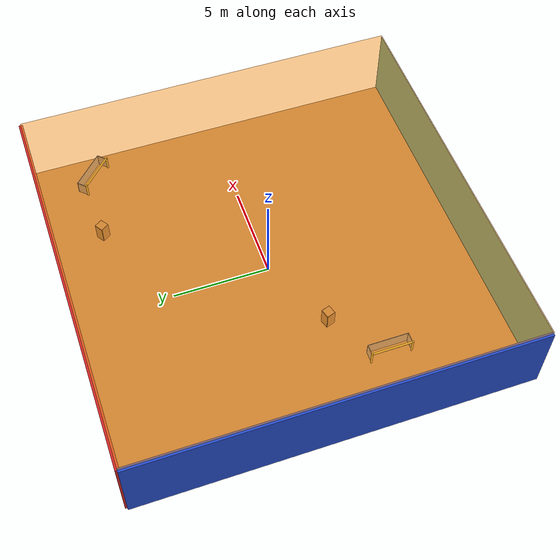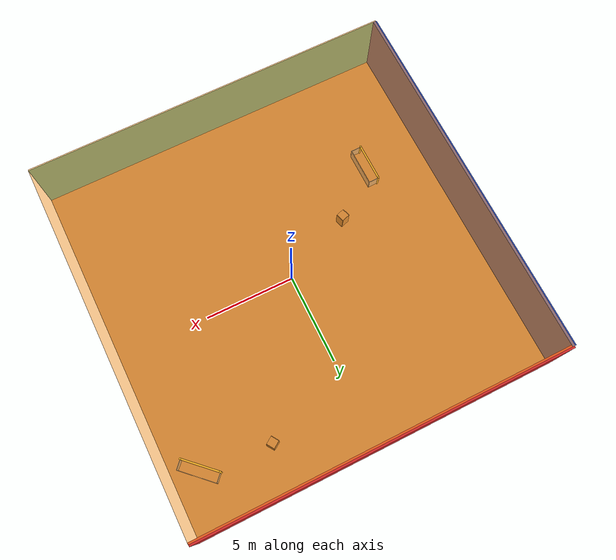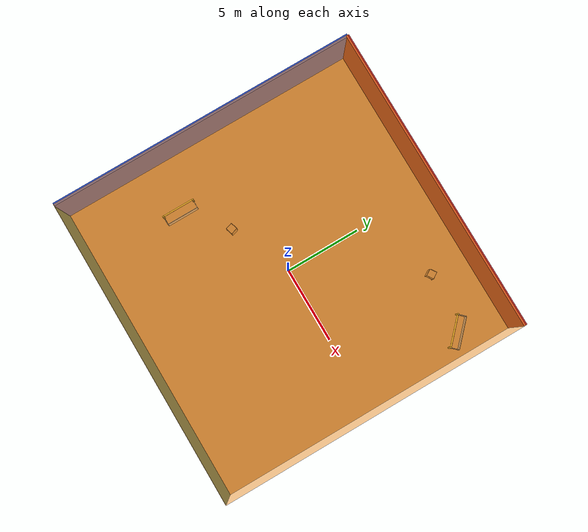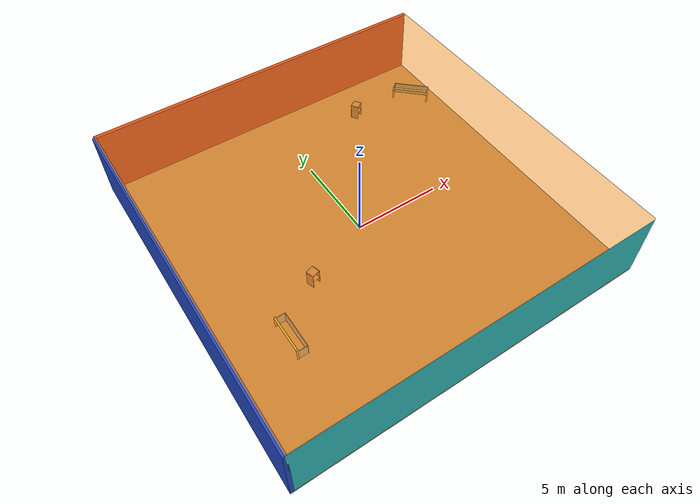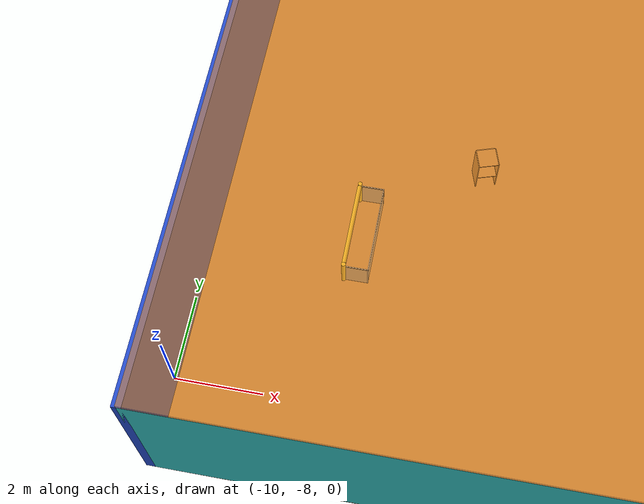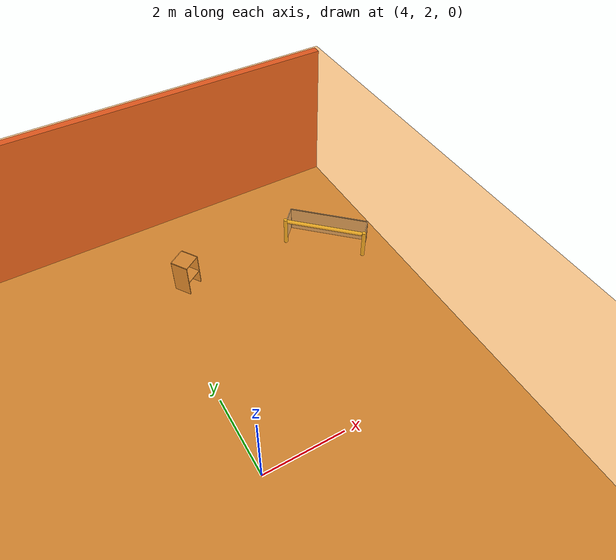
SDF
<sdf version="1.4">
 <world name="default">
  <physics type="ode">
   <max_step_size>0.001</max_step_size>
   <real_time_factor>1</real_time_factor>
   <real_time_update_rate>1000</real_time_update_rate>
   <gravity>0 0 -9.8</gravity>
  </physics>
  <scene><ambient>0.4 0.4 0.4 1</ambient><background>0.7 0.7 0.7 1</background><shadows>1</shadows></scene>
  <model name="Surrounding">
   <static>1</static>
   <link name="Ceiling">
    <collision name="Ceiling_Collision"><geometry><box><size>20 20 0.1</size></box></geometry></collision>
    <visual name="Ceiling_Visual">
     <geometry><box><size>20 20 0.1</size></box></geometry>
     <material>
      <script>
       <uri>file://media/materials/scripts/gazebo.material</uri>
       <name>Gazebo/OrangeTransparent</name>
      </script>
     </material>
    </visual>
    <pose>0 0 4.05 0 0 0</pose>
   </link>
   <link name="Wall_South">
    <collision name="Wall_South_Collision">
     <geometry><box><size>20 0 4</size></box></geometry>
     <pose>0 0 2 0 -0 0</pose>
    </collision>
    <visual name="Wall_South_Visual">
     <pose>0 0 2 0 -0 0</pose>
     <geometry><box><size>20 0 4</size></box></geometry>
     <material>
      <script><uri>file://media/materials/scripts/gazebo.material</uri><name>Gazebo/TurquoiseGlow</name></script>
     </material>
    </visual>
    <velocity_decay><linear>0</linear><angular>0</angular></velocity_decay>
    <pose>0 -10 0 0 -0 0</pose>
   </link>
   <link name="Wall_East">
    <collision name="Wall_21_Collision">
     <geometry><box><size>20 0 4</size></box></geometry>
     <pose>0 0 2 0 -0 0</pose>
    </collision>
    <visual name="Wall_21_Visual">
     <pose>0 0 2 0 -0 0</pose>
     <geometry><box><size>20 0 4</size></box></geometry>
     <material>
      <script><uri>file://media/materials/scripts/gazebo.material</uri><name>Gazebo/GreyTransparent</name></script>
     </material>
    </visual>
    <velocity_decay><linear>0</linear><angular>0</angular></velocity_decay>
    <pose>10 0 0 0 -0 1.5708</pose>
   </link>
   <link name="Wall_North">
    <collision name="Wall_22_Collision">
     <geometry><box><size>20 0.2 4</size></box></geometry>
     <pose>0 0 2 0 -0 0</pose>
    </collision>
    <visual name="Wall_22_Visual">
     <pose>0 0 2 0 -0 0</pose>
     <geometry><box><size>20 0.2 4</size></box></geometry>
     <material>
      <script><uri>file://media/materials/scripts/gazebo.material</uri><name>Gazebo/RedBright</name></script>
     </material>
    </visual>
    <velocity_decay><linear>0</linear><angular>0</angular></velocity_decay>
    <pose>0 10 0 0 -0 0</pose>
   </link>
   <link name="Wall_West">
    <collision name="Wall_23_Collision">
     <geometry><box><size>20 0.2 4</size></box></geometry>
     <pose>0 0 2 0 -0 0</pose>
    </collision>
    <visual name="Wall_23_Visual">
     <pose>0 0 2 0 -0 0</pose>
     <geometry><box><size>20 0.2 4</size></box></geometry>
     <material>
      <script><uri>file://media/materials/scripts/gazebo.material</uri><name>Gazebo/BlueLaser</name></script>
     </material>
    </visual>
    <velocity_decay><linear>0</linear><angular>0</angular></velocity_decay>
    <pose>-10 0 0 0 0 -1.5708</pose>
   </link>
   <link name="Ground_link">
    <collision name="collision">
     <pose>0 0 .05 0 -0 0</pose>
     <geometry><box><size>20 20 0.1</size></box></geometry>
    </collision>
    <visual name="visual">
     <pose>0 0 .05 0 -0 0</pose>
     <geometry><box><size>20 20 0.1</size></box></geometry>
     <material>
      <script><uri>file://media/materials/scripts/gazebo.material</uri><name>Gazebo/Wood</name></script>
     </material>
    </visual>
   </link>
   <static>1</static>
  </model>
  <spherical_coordinates>
   <surface_model>EARTH_WGS84</surface_model>
   <latitude_deg>0</latitude_deg>
   <longitude_deg>0</longitude_deg>
   <elevation>0</elevation>
   <heading_deg>0</heading_deg>
  </spherical_coordinates>
  <light name="lightball_0" type="diffuse">
   <diffuse>0.8 0.8 0.8 1</diffuse>
   <specular>0.2 0.2 0.2 1</specular>
   <attenuation>
    <range>100</range>
    <constant>0.7</constant>
    <linear>0.01</linear>
    <quadratic>0.001</quadratic>
   </attenuation>
   <direction>-0.5 0.1 -0.9</direction>
   <pose>-6.92577479979 -3.15472615881 3.24658218058 0 0 0</pose>
  </light>
  <light name="lightball_1" type="diffuse">
   <diffuse>0.8 0.8 0.8 1</diffuse>
   <specular>0.2 0.2 0.2 1</specular>
   <attenuation>
    <range>100</range>
    <constant>0.7</constant>
    <linear>0.01</linear>
    <quadratic>0.001</quadratic>
   </attenuation>
   <direction>-0.5 0.1 -0.9</direction>
   <pose>0.2642912787 2.18845863077 1.97865102495 0 0 0</pose>
  </light>
  <light name="lightball_2" type="diffuse">
   <diffuse>0.8 0.8 0.8 1</diffuse>
   <specular>0.2 0.2 0.2 1</specular>
   <attenuation>
    <range>100</range>
    <constant>0.7</constant>
    <linear>0.01</linear>
    <quadratic>0.001</quadratic>
   </attenuation>
   <direction>-0.5 0.1 -0.9</direction>
   <pose>-0.0874294791411 1.71777674525 1.99980424516 0 0 0</pose>
  </light>
  <light name="lightball_3" type="diffuse">
   <diffuse>0.8 0.8 0.8 1</diffuse>
   <specular>0.2 0.2 0.2 1</specular>
   <attenuation>
    <range>100</range>
    <constant>0.7</constant>
    <linear>0.01</linear>
    <quadratic>0.001</quadratic>
   </attenuation>
   <direction>-0.5 0.1 -0.9</direction>
   <pose>-9.56620351428 8.77355638406 2.89818001741 0 0 0</pose>
  </light>
  <light name="lightball_4" type="diffuse">
   <diffuse>0.8 0.8 0.8 1</diffuse>
   <specular>0.2 0.2 0.2 1</specular>
   <attenuation>
    <range>100</range>
    <constant>0.7</constant>
    <linear>0.01</linear>
    <quadratic>0.001</quadratic>
   </attenuation>
   <direction>-0.5 0.1 -0.9</direction>
   <pose>9.46290463052 6.76002141479 3.8255342519 0 0 0</pose>
  </light>
  <light name="lightball_5" type="diffuse">
   <diffuse>0.8 0.8 0.8 1</diffuse>
   <specular>0.2 0.2 0.2 1</specular>
   <attenuation>
    <range>100</range>
    <constant>0.7</constant>
    <linear>0.01</linear>
    <quadratic>0.001</quadratic>
   </attenuation>
   <direction>-0.5 0.1 -0.9</direction>
   <pose>3.2506655539 -1.41302917747 0.80131834582 0 0 0</pose>
  </light>
  <light name="lightball_6" type="diffuse">
   <diffuse>0.8 0.8 0.8 1</diffuse>
   <specular>0.2 0.2 0.2 1</specular>
   <attenuation>
    <range>100</range>
    <constant>0.7</constant>
    <linear>0.01</linear>
    <quadratic>0.001</quadratic>
   </attenuation>
   <direction>-0.5 0.1 -0.9</direction>
   <pose>-9.39914729057 -5.31802592334 0.581462953911 0 0 0</pose>
  </light>
  <light name="lightball_7" type="diffuse">
   <diffuse>0.8 0.8 0.8 1</diffuse>
   <specular>0.2 0.2 0.2 1</specular>
   <attenuation>
    <range>100</range>
    <constant>0.7</constant>
    <linear>0.01</linear>
    <quadratic>0.001</quadratic>
   </attenuation>
   <direction>-0.5 0.1 -0.9</direction>
   <pose>-0.890123632434 -5.39082746854 1.02849519889 0 0 0</pose>
  </light>
  <light name="lightball_8" type="diffuse">
   <diffuse>0.8 0.8 0.8 1</diffuse>
   <specular>0.2 0.2 0.2 1</specular>
   <attenuation>
    <range>100</range>
    <constant>0.7</constant>
    <linear>0.01</linear>
    <quadratic>0.001</quadratic>
   </attenuation>
   <direction>-0.5 0.1 -0.9</direction>
   <pose>-0.997986473726 -1.94420683714 2.98827937059 0 0 0</pose>
  </light>
  <light name="lightball_9" type="diffuse">
   <diffuse>0.8 0.8 0.8 1</diffuse>
   <specular>0.2 0.2 0.2 1</specular>
   <attenuation>
    <range>100</range>
    <constant>0.7</constant>
    <linear>0.01</linear>
    <quadratic>0.001</quadratic>
   </attenuation>
   <direction>-0.5 0.1 -0.9</direction>
   <pose>2.38395558632 8.35552523504 1.99462332428 0 0 0</pose>
  </light>
  <light name="lightball_10" type="diffuse">
   <diffuse>0.8 0.8 0.8 1</diffuse>
   <specular>0.2 0.2 0.2 1</specular>
   <attenuation>
    <range>100</range>
    <constant>0.7</constant>
    <linear>0.01</linear>
    <quadratic>0.001</quadratic>
   </attenuation>
   <direction>-0.5 0.1 -0.9</direction>
   <pose>2.23075540104 -5.31524874747 3.62412783342 0 0 0</pose>
  </light>
  <include>
   <uri>model://robocup_3Dsim_goal</uri>
   <pose>-6.75901118983 -3.92566027683 0 0 0 0.00145629682246</pose>
  </include>
  <include><uri>model://cabinet</uri><pose>-3.94401725711 -1.72014313691 0 0 0 1.8773833945</pose></include>
  <include><uri>model://cabinet</uri><pose>4.72181008266 7.42376606466 0 0 0 2.15649300494</pose></include>
  <include>
   <uri>model://robocup_3Dsim_goal</uri>
   <pose>8.39688379333 6.82205248305 0 0 0 0.808324281829</pose>
  </include>
 </world>
</sdf>

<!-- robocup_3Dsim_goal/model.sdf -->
<sdf version="1.5">
  <model name="robocup_3d_goal">
    <static>true</static>
    <link name="left_post">
      <pose>0 1.05 0.45 0 0 0</pose>
      <collision name="collision">
        <geometry>
          <cylinder>
            <radius>0.05</radius>
            <length>0.9</length>
          </cylinder>
        </geometry>
      </collision>
      <visual name="visual">
        <geometry>
          <cylinder>
            <radius>0.05</radius>
            <length>0.9</length>
          </cylinder>
        </geometry>
        <material>
          <script>
            <uri>file://media/materials/scripts/gazebo.material</uri>
            <name>Gazebo/ZincYellow</name>
          </script>
        </material>
      </visual>
    </link>
    <link name="left_support_horiz_lower">
      <pose>0.30 1.05 0.01 0 0 0</pose>
      <collision name="collision">
        <geometry>
          <box>
            <size>0.50 0.02 0.02</size>
          </box>
        </geometry>
      </collision>
      <visual name="visual">
        <geometry>
          <box>
            <size>0.50 0.02 0.02</size>
          </box>
        </geometry>
        <material>
          <script>
            <uri>file://media/materials/scripts/gazebo.material</uri>
            <name>Gazebo/White</name>
          </script>
        </material>
      </visual>
    </link>
    <link name="left_support_horiz_upper">
      <pose>0.30 1.05 0.79 0 0 0</pose>
      <collision name="collision">
        <geometry>
          <box>
            <size>0.50 0.02 0.02</size>
          </box>
        </geometry>
      </collision>
      <visual name="visual">
        <geometry>
          <box>
            <size>0.50 0.02 0.02</size>
          </box>
        </geometry>
        <material>
          <script>
            <uri>file://media/materials/scripts/gazebo.material</uri>
            <name>Gazebo/White</name>
          </script>
        </material>
      </visual>
    </link>
    <link name="left_support_vertical">
      <pose>0.56 1.05 0.4 0 1.5708 0</pose>
      <collision name="collision">
        <geometry>
          <box>
            <size>0.80 0.02 0.02</size>
          </box>
        </geometry>
      </collision>
      <visual name="visual">
        <geometry>
          <box>
            <size>0.80 0.02 0.02</size>
          </box>
        </geometry>
        <material>
          <script>
            <uri>file://media/materials/scripts/gazebo.material</uri>
            <name>Gazebo/White</name>
          </script>
        </material>
      </visual>
    </link>
    <link name="right_support_horiz_lower">
      <pose>0.30 -1.05 0.01 0 0 0</pose>
      <collision name="collision">
        <geometry>
          <box>
            <size>0.50 0.02 0.02</size>
          </box>
        </geometry>
      </collision>
      <visual name="visual">
        <geometry>
          <box>
            <size>0.50 0.02 0.02</size>
          </box>
        </geometry>
        <material>
          <script>
            <uri>file://media/materials/scripts/gazebo.material</uri>
            <name>Gazebo/White</name>
          </script>
        </material>
      </visual>
    </link>
    <link name="right_support_horiz_upper">
      <pose>0.30 -1.05 0.79 0 0 0</pose>
      <collision name="collision">
        <geometry>
          <box>
            <size>0.50 0.02 0.02</size>
          </box>
        </geometry>
      </collision>
      <visual name="visual">
        <geometry>
          <box>
            <size>0.50 0.02 0.02</size>
          </box>
        </geometry>
        <material>
          <script>
            <uri>file://media/materials/scripts/gazebo.material</uri>
            <name>Gazebo/White</name>
          </script>
        </material>
      </visual>
    </link>
    <link name="right_support_vertical">
      <pose>0.56 -1.05 0.4 0 1.5708 0</pose>
      <collision name="collision">
        <geometry>
          <box>
            <size>0.80 0.02 0.02</size>
          </box>
        </geometry>
      </collision>
      <visual name="visual">
        <geometry>
          <box>
            <size>0.80 0.02 0.02</size>
          </box>
        </geometry>
        <material>
          <script>
            <uri>file://media/materials/scripts/gazebo.material</uri>
            <name>Gazebo/White</name>
          </script>
        </material>
      </visual>
    </link>
    <link name="center_support_horiz_lower">
      <pose>0.56 0 0.01 0 1.5708 0</pose>
      <collision name="collision">
        <geometry>
          <box>
            <size>0.02 2.08 0.02</size>
          </box>
        </geometry>
      </collision>
      <visual name="visual">
        <geometry>
          <box>
            <size>0.02 2.08 0.02</size>
          </box>
        </geometry>
        <material>
          <script>
            <uri>file://media/materials/scripts/gazebo.material</uri>
            <name>Gazebo/White</name>
          </script>
        </material>
      </visual>
    </link>
    <link name="center_support_horiz_upper">
      <pose>0.56 0 0.79 0 1.5708 0</pose>
      <collision name="collision">
        <geometry>
          <box>
            <size>0.02 2.08 0.02</size>
          </box>
        </geometry>
      </collision>
      <visual name="visual">
        <geometry>
          <box>
            <size>0.02 2.08 0.02</size>
          </box>
        </geometry>
        <material>
          <script>
            <uri>file://media/materials/scripts/gazebo.material</uri>
            <name>Gazebo/White</name>
          </script>
        </material>
      </visual>
    </link>
    <link name="right_post">
      <pose>0 -1.05 0.45 0 0 0</pose>
      <collision name="collision">
        <geometry>
          <cylinder>
            <radius>0.05</radius>
            <length>0.9</length>
          </cylinder>
        </geometry>
      </collision>
      <visual name="visual">
        <geometry>
          <cylinder>
            <radius>0.05</radius>
            <length>0.9</length>
          </cylinder>
        </geometry>
        <material>
          <script>
            <uri>file://media/materials/scripts/gazebo.material</uri>
            <name>Gazebo/ZincYellow</name>
          </script>
        </material>
      </visual>
    </link>
    <link name="crossbar">
      <pose>0 0 0.85 1.57 1.57 0</pose>
      <collision name="collision">
        <geometry>
          <cylinder>
            <radius>0.05</radius>
            <length>2.0</length>
          </cylinder>
        </geometry>
      </collision>
      <visual name="visual">
        <geometry>
          <cylinder>
            <radius>0.05</radius>
            <length>2.0</length>
          </cylinder>
        </geometry>
        <material>
          <script>
            <uri>file://media/materials/scripts/gazebo.material</uri>
            <name>Gazebo/ZincYellow</name>
          </script>
        </material>
      </visual>
    </link>
    <link name="center_net">
      <pose>0.56 0 0.40 0 0 0</pose>
      <collision name="collision">
        <geometry>
          <box>
            <size>0.01 2.1 0.80</size>
          </box>
        </geometry>
      </collision>
      <visual name="visual">
        <geometry>
          <box>
            <size>0.01 2.1 0.80</size>
          </box>
        </geometry>
        <material>
          <script>
            <uri>model://../model_source/models/robocup09_spl_field/materials/scripts/</uri>
            <uri>model://../model_source/models/robocup09_spl_field/materials/textures/</uri>
            <name>RoboCup/Net</name>
          </script>
        </material>
      </visual>
    </link>
    <link name="left_net">
      <pose>0.30 1.05 0.40 0 0 0</pose>
      <collision name="collision">
        <geometry>
          <box>
            <size>0.50 0.01 0.76</size>
          </box>
        </geometry>
      </collision>
      <visual name="visual">
        <geometry>
          <box>
            <size>0.50 0.01 0.76</size>
          </box>
        </geometry>
        <material>
          <script>
            <uri>model://../model_source/models/robocup09_spl_field/materials/scripts/</uri>
            <uri>model://../model_source/models/robocup09_spl_field/materials/textures/</uri>
            <name>RoboCup/Net</name>
          </script>
        </material>
      </visual>
    </link>
    <link name="right_net">
      <pose>0.30 -1.05 0.40 0 0 0</pose>
      <collision name="collision">
        <geometry>
          <box>
            <size>0.50 0.01 0.76</size>
          </box>
        </geometry>
      </collision>
      <visual name="visual">
        <geometry>
          <box>
            <size>0.50 0.01 0.76</size>
          </box>
        </geometry>
        <material>
          <script>
            <uri>model://../model_source/models/robocup09_spl_field/materials/scripts/</uri>
            <uri>model://../model_source/models/robocup09_spl_field/materials/textures/</uri>
            <name>RoboCup/Net</name>
          </script>
        </material>
      </visual>
    </link>
  </model>
</sdf>

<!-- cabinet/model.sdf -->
<sdf version="1.5">
  <model name="cabinet">
    <static>true</static>
    <link name="cabinet_bottom_plate">
      <inertial>
        <pose>0 0 -1 0 0 0</pose>
        <inertia>
          <ixx>2.050000</ixx>
          <ixy>0</ixy>
          <ixz>0</ixz>
          <iyy>2.050000</iyy>
          <iyz>0</iyz>
          <izz>2.050000</izz>
        </inertia>
        <mass>25.000000</mass>
      </inertial>
      <collision name="cabinet_bottom_plate_geom">
        <pose>0 0 0.010000 0 0 0</pose>
        <geometry>
          <box>
            <size>0.450000 0.450000 0.020000</size>
          </box>
        </geometry>
      </collision>
      <visual name="cabinet_bottom_plate_geom_visual">
        <pose>0 0 0.010000 0 0 0</pose>
        <geometry>
          <box>
            <size>0.450000 0.450000 0.020000</size>
          </box>
        </geometry>
        <material>
          <script>
            <uri>model://media/materials/scripts/gazebo.material</uri>
            <name>Gazebo/Wood</name>
          </script>
        </material>
      </visual>
      <collision name="cabinet_bottom_plate_geom_cabinet_back_plate">
        <pose>0.235000 0 0.510000 0 0 0</pose>
        <geometry>
          <box>
            <size>0.020000 0.450000 1.020000</size>
          </box>
        </geometry>
      </collision>
      <visual name="cabinet_bottom_plate_geom_cabinet_back_plate_visual">
        <pose>0.235000 0 0.510000 0 0 0</pose>
        <geometry>
          <box>
            <size>0.020000 0.450000 1.020000</size>
          </box>
        </geometry>
        <material>
          <script>
            <uri>model://media/materials/scripts/gazebo.material</uri>
            <name>Gazebo/Wood</name>
          </script>
        </material>
      </visual>
      <collision name="cabinet_bottom_plate_geom_cabinet_left_plate">
        <pose>0 0.235000 0.510000 0 0 0</pose>
        <geometry>
          <box>
            <size>0.450000 0.020000 1.020000</size>
          </box>
        </geometry>
      </collision>
      <visual name="cabinet_bottom_plate_geom_cabinet_left_plate_visual">
        <pose>0 0.235000 0.510000 0 0 0</pose>
        <geometry>
          <box>
            <size>0.450000 0.020000 1.020000</size>
          </box>
        </geometry>
        <material>
          <script>
            <uri>model://media/materials/scripts/gazebo.material</uri>
            <name>Gazebo/Wood</name>
          </script>
        </material>
      </visual>
      <collision name="cabinet_bottom_plate_geom_cabinet_middle_plate">
        <pose>0 0 0.510000 0 0 0</pose>
        <geometry>
          <box>
            <size>0.450000 0.450000 0.020000</size>
          </box>
        </geometry>
      </collision>
      <visual name="cabinet_bottom_plate_geom_cabinet_middle_plate_visual">
        <pose>0 0 0.510000 0 0 0</pose>
        <geometry>
          <box>
            <size>0.450000 0.450000 0.020000</size>
          </box>
        </geometry>
        <material>
          <script>
            <uri>model://media/materials/scripts/gazebo.material</uri>
            <name>Gazebo/Wood</name>
          </script>
        </material>
      </visual>
      <collision name="cabinet_bottom_plate_geom_cabinet_right_plate">
        <pose>0 -0.235000 0.510000 0 0 0</pose>
        <geometry>
          <box>
            <size>0.450000 0.020000 1.020000</size>
          </box>
        </geometry>
      </collision>
      <visual name="cabinet_bottom_plate_geom_cabinet_right_plate_visual">
        <pose>0 -0.235000 0.510000 0 0 0</pose>
        <geometry>
          <box>
            <size>0.450000 0.020000 1.020000</size>
          </box>
        </geometry>
        <material>
          <script>
            <uri>model://media/materials/scripts/gazebo.material</uri>
            <name>Gazebo/Wood</name>
          </script>
        </material>
      </visual>
      <collision name="cabinet_bottom_plate_geom_cabinet_top_plate">
        <pose>0 0 1.010000 0 0 0</pose>
        <geometry>
          <box>
            <size>0.450000 0.450000 0.020000</size>
          </box>
        </geometry>
      </collision>
      <visual name="cabinet_bottom_plate_geom_cabinet_top_plate_visual">
        <pose>0 0 1.010000 0 0 0</pose>
        <geometry>
          <box>
            <size>0.450000 0.450000 0.020000</size>
          </box>
        </geometry>
        <material>
          <script>
            <uri>model://media/materials/scripts/gazebo.material</uri>
            <name>Gazebo/Wood</name>
          </script>
        </material>
      </visual>
    </link>
  </model>
</sdf>
